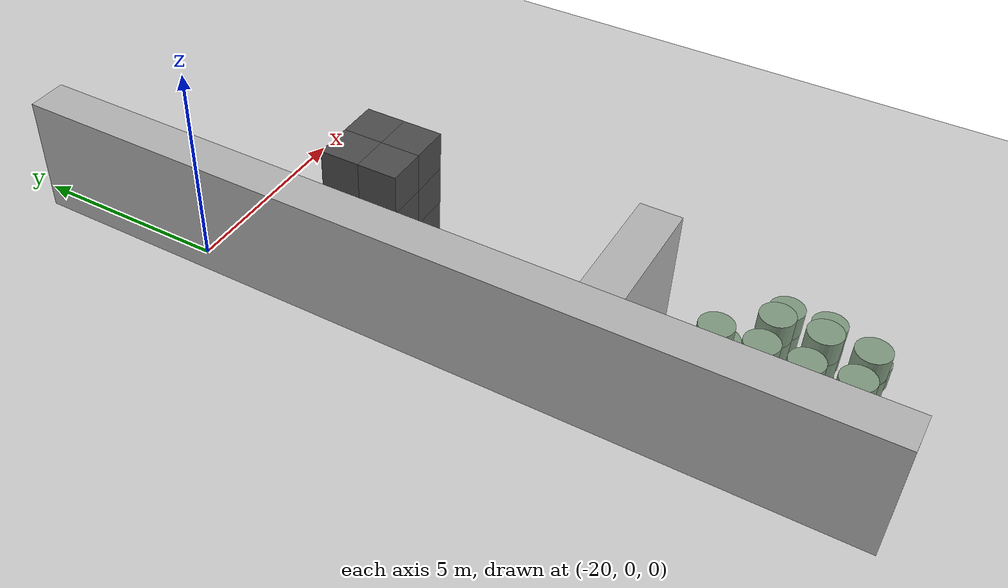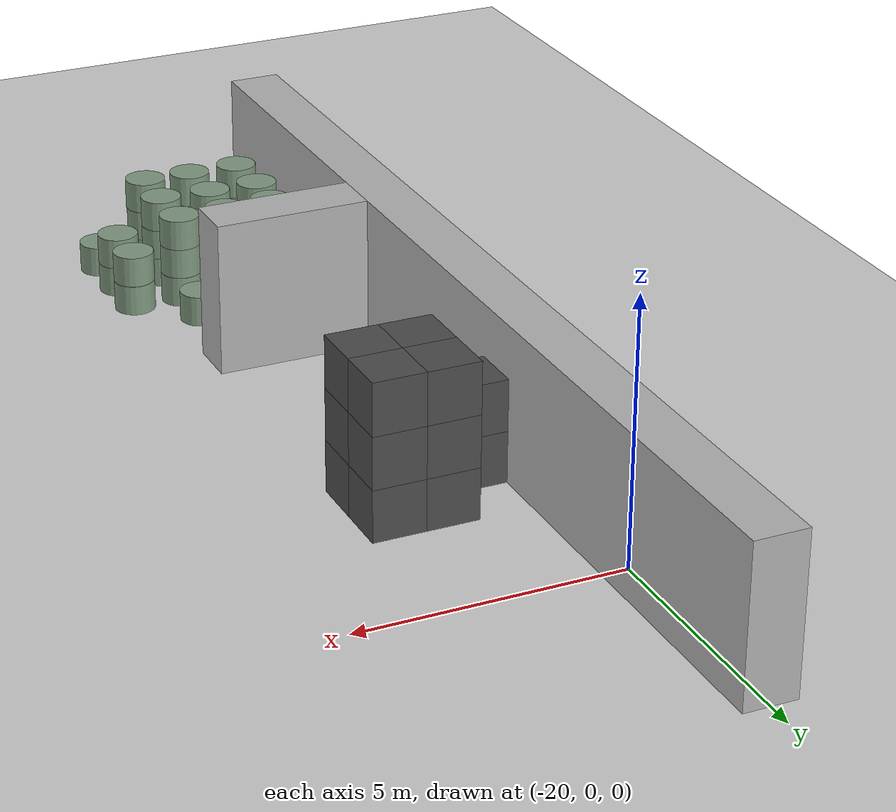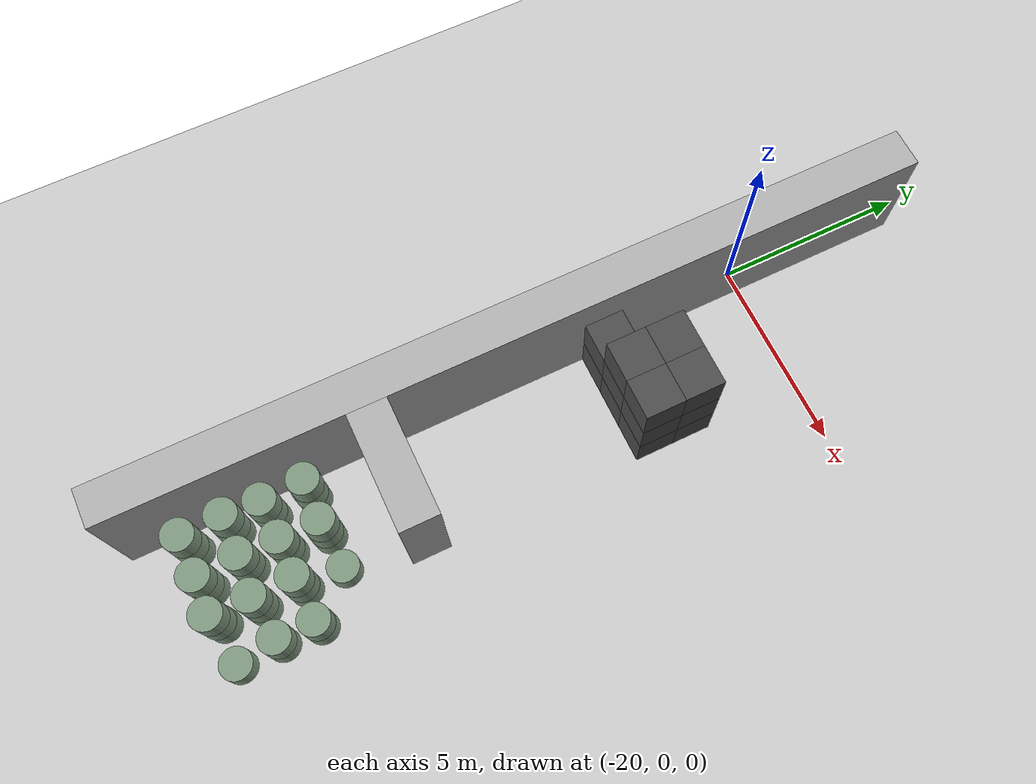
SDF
<sdf version="1.6">
 <world name="default">
  <include><uri>model://ground_plane</uri></include>
  <model name="wall_0">
   <pose>-20.0 -6.0 1.5 0 -0 0</pose>
   <static>True</static>
   <link name="link">
    <inertial>
     <mass>100</mass>
     <inertia>
      <ixx>0.166667</ixx>
      <ixy>0</ixy>
      <ixz>0</ixz>
      <iyy>0.166667</iyy>
      <iyz>0</iyz>
      <izz>0.166667</izz>
     </inertia>
    </inertial>
    <collision name="collision"><geometry><box><size>1.0 21.0 3.0</size></box></geometry></collision>
    <visual name="visual">
     <geometry><box><size>1.0 21.0 3.0</size></box></geometry>
     <material><ambient>0.7 0.7 0.7 1</ambient><diffuse>0.7 0.7 0.7 1</diffuse></material>
    </visual>
   </link>
  </model>
  <model name="wall_7">
   <pose>-18.0 -10.0 1.5 0 -0 0</pose>
   <static>True</static>
   <link name="link">
    <inertial>
     <mass>100</mass>
     <inertia>
      <ixx>0.166667</ixx>
      <ixy>0</ixy>
      <ixz>0</ixz>
      <iyy>0.166667</iyy>
      <iyz>0</iyz>
      <izz>0.166667</izz>
     </inertia>
    </inertial>
    <collision name="collision"><geometry><box><size>3.0 1.0 3.0</size></box></geometry></collision>
    <visual name="visual">
     <geometry><box><size>3.0 1.0 3.0</size></box></geometry>
     <material><ambient>0.7 0.7 0.7 1</ambient><diffuse>0.7 0.7 0.7 1</diffuse></material>
    </visual>
   </link>
  </model>
  <model name="unit_box_0">
   <pose>-19.0 -4.0 0.5 0 -0 0</pose>
   <static>True</static>
   <link name="link">
    <inertial>
     <mass>100</mass>
     <inertia>
      <ixx>0.166667</ixx>
      <ixy>0</ixy>
      <ixz>0</ixz>
      <iyy>0.166667</iyy>
      <iyz>0</iyz>
      <izz>0.166667</izz>
     </inertia>
    </inertial>
    <collision name="collision"><geometry><box><size>1.0 1.0 1.0</size></box></geometry></collision>
    <visual name="visual">
     <geometry><box><size>1.0 1.0 1.0</size></box></geometry>
     <material><ambient>0.3 0.3 0.3 1</ambient><diffuse>0.3 0.3 0.3 1</diffuse></material>
    </visual>
   </link>
  </model>
  <model name="unit_box_1">
   <pose>-19.0 -4.0 1.5 0 -0 0</pose>
   <static>True</static>
   <link name="link">
    <inertial>
     <mass>100</mass>
     <inertia>
      <ixx>0.166667</ixx>
      <ixy>0</ixy>
      <ixz>0</ixz>
      <iyy>0.166667</iyy>
      <iyz>0</iyz>
      <izz>0.166667</izz>
     </inertia>
    </inertial>
    <collision name="collision"><geometry><box><size>1.0 1.0 1.0</size></box></geometry></collision>
    <visual name="visual">
     <geometry><box><size>1.0 1.0 1.0</size></box></geometry>
     <material><ambient>0.3 0.3 0.3 1</ambient><diffuse>0.3 0.3 0.3 1</diffuse></material>
    </visual>
   </link>
  </model>
  <model name="unit_box_2">
   <pose>-18.0 -4.0 0.5 0 -0 0</pose>
   <static>True</static>
   <link name="link">
    <inertial>
     <mass>100</mass>
     <inertia>
      <ixx>0.166667</ixx>
      <ixy>0</ixy>
      <ixz>0</ixz>
      <iyy>0.166667</iyy>
      <iyz>0</iyz>
      <izz>0.166667</izz>
     </inertia>
    </inertial>
    <collision name="collision"><geometry><box><size>1.0 1.0 1.0</size></box></geometry></collision>
    <visual name="visual">
     <geometry><box><size>1.0 1.0 1.0</size></box></geometry>
     <material><ambient>0.3 0.3 0.3 1</ambient><diffuse>0.3 0.3 0.3 1</diffuse></material>
    </visual>
   </link>
  </model>
  <model name="unit_box_3">
   <pose>-18.0 -4.0 1.5 0 -0 0</pose>
   <static>True</static>
   <link name="link">
    <inertial>
     <mass>100</mass>
     <inertia>
      <ixx>0.166667</ixx>
      <ixy>0</ixy>
      <ixz>0</ixz>
      <iyy>0.166667</iyy>
      <iyz>0</iyz>
      <izz>0.166667</izz>
     </inertia>
    </inertial>
    <collision name="collision"><geometry><box><size>1.0 1.0 1.0</size></box></geometry></collision>
    <visual name="visual">
     <geometry><box><size>1.0 1.0 1.0</size></box></geometry>
     <material><ambient>0.3 0.3 0.3 1</ambient><diffuse>0.3 0.3 0.3 1</diffuse></material>
    </visual>
   </link>
  </model>
  <model name="unit_box_4">
   <pose>-18.0 -4.0 2.5 0 -0 0</pose>
   <static>True</static>
   <link name="link">
    <inertial>
     <mass>100</mass>
     <inertia>
      <ixx>0.166667</ixx>
      <ixy>0</ixy>
      <ixz>0</ixz>
      <iyy>0.166667</iyy>
      <iyz>0</iyz>
      <izz>0.166667</izz>
     </inertia>
    </inertial>
    <collision name="collision"><geometry><box><size>1.0 1.0 1.0</size></box></geometry></collision>
    <visual name="visual">
     <geometry><box><size>1.0 1.0 1.0</size></box></geometry>
     <material><ambient>0.3 0.3 0.3 1</ambient><diffuse>0.3 0.3 0.3 1</diffuse></material>
    </visual>
   </link>
  </model>
  <model name="unit_box_5">
   <pose>-18.0 -3.0 0.5 0 -0 0</pose>
   <static>True</static>
   <link name="link">
    <inertial>
     <mass>100</mass>
     <inertia>
      <ixx>0.166667</ixx>
      <ixy>0</ixy>
      <ixz>0</ixz>
      <iyy>0.166667</iyy>
      <iyz>0</iyz>
      <izz>0.166667</izz>
     </inertia>
    </inertial>
    <collision name="collision"><geometry><box><size>1.0 1.0 1.0</size></box></geometry></collision>
    <visual name="visual">
     <geometry><box><size>1.0 1.0 1.0</size></box></geometry>
     <material><ambient>0.3 0.3 0.3 1</ambient><diffuse>0.3 0.3 0.3 1</diffuse></material>
    </visual>
   </link>
  </model>
  <model name="unit_box_6">
   <pose>-18.0 -3.0 1.5 0 -0 0</pose>
   <static>True</static>
   <link name="link">
    <inertial>
     <mass>100</mass>
     <inertia>
      <ixx>0.166667</ixx>
      <ixy>0</ixy>
      <ixz>0</ixz>
      <iyy>0.166667</iyy>
      <iyz>0</iyz>
      <izz>0.166667</izz>
     </inertia>
    </inertial>
    <collision name="collision"><geometry><box><size>1.0 1.0 1.0</size></box></geometry></collision>
    <visual name="visual">
     <geometry><box><size>1.0 1.0 1.0</size></box></geometry>
     <material><ambient>0.3 0.3 0.3 1</ambient><diffuse>0.3 0.3 0.3 1</diffuse></material>
    </visual>
   </link>
  </model>
  <model name="unit_box_7">
   <pose>-18.0 -3.0 2.5 0 -0 0</pose>
   <static>True</static>
   <link name="link">
    <inertial>
     <mass>100</mass>
     <inertia>
      <ixx>0.166667</ixx>
      <ixy>0</ixy>
      <ixz>0</ixz>
      <iyy>0.166667</iyy>
      <iyz>0</iyz>
      <izz>0.166667</izz>
     </inertia>
    </inertial>
    <collision name="collision"><geometry><box><size>1.0 1.0 1.0</size></box></geometry></collision>
    <visual name="visual">
     <geometry><box><size>1.0 1.0 1.0</size></box></geometry>
     <material><ambient>0.3 0.3 0.3 1</ambient><diffuse>0.3 0.3 0.3 1</diffuse></material>
    </visual>
   </link>
  </model>
  <model name="unit_box_17">
   <pose>-17.0 -4.0 0.5 0 -0 0</pose>
   <static>True</static>
   <link name="link">
    <inertial>
     <mass>100</mass>
     <inertia>
      <ixx>0.166667</ixx>
      <ixy>0</ixy>
      <ixz>0</ixz>
      <iyy>0.166667</iyy>
      <iyz>0</iyz>
      <izz>0.166667</izz>
     </inertia>
    </inertial>
    <collision name="collision"><geometry><box><size>1.0 1.0 1.0</size></box></geometry></collision>
    <visual name="visual">
     <geometry><box><size>1.0 1.0 1.0</size></box></geometry>
     <material><ambient>0.3 0.3 0.3 1</ambient><diffuse>0.3 0.3 0.3 1</diffuse></material>
    </visual>
   </link>
  </model>
  <model name="unit_box_18">
   <pose>-17.0 -4.0 1.5 0 -0 0</pose>
   <static>True</static>
   <link name="link">
    <inertial>
     <mass>100</mass>
     <inertia>
      <ixx>0.166667</ixx>
      <ixy>0</ixy>
      <ixz>0</ixz>
      <iyy>0.166667</iyy>
      <iyz>0</iyz>
      <izz>0.166667</izz>
     </inertia>
    </inertial>
    <collision name="collision"><geometry><box><size>1.0 1.0 1.0</size></box></geometry></collision>
    <visual name="visual">
     <geometry><box><size>1.0 1.0 1.0</size></box></geometry>
     <material><ambient>0.3 0.3 0.3 1</ambient><diffuse>0.3 0.3 0.3 1</diffuse></material>
    </visual>
   </link>
  </model>
  <model name="unit_box_19">
   <pose>-17.0 -4.0 2.5 0 -0 0</pose>
   <static>True</static>
   <link name="link">
    <inertial>
     <mass>100</mass>
     <inertia>
      <ixx>0.166667</ixx>
      <ixy>0</ixy>
      <ixz>0</ixz>
      <iyy>0.166667</iyy>
      <iyz>0</iyz>
      <izz>0.166667</izz>
     </inertia>
    </inertial>
    <collision name="collision"><geometry><box><size>1.0 1.0 1.0</size></box></geometry></collision>
    <visual name="visual">
     <geometry><box><size>1.0 1.0 1.0</size></box></geometry>
     <material><ambient>0.3 0.3 0.3 1</ambient><diffuse>0.3 0.3 0.3 1</diffuse></material>
    </visual>
   </link>
  </model>
  <model name="unit_box_20">
   <pose>-17.0 -3.0 0.5 0 -0 0</pose>
   <static>True</static>
   <link name="link">
    <inertial>
     <mass>100</mass>
     <inertia>
      <ixx>0.166667</ixx>
      <ixy>0</ixy>
      <ixz>0</ixz>
      <iyy>0.166667</iyy>
      <iyz>0</iyz>
      <izz>0.166667</izz>
     </inertia>
    </inertial>
    <collision name="collision"><geometry><box><size>1.0 1.0 1.0</size></box></geometry></collision>
    <visual name="visual">
     <geometry><box><size>1.0 1.0 1.0</size></box></geometry>
     <material><ambient>0.3 0.3 0.3 1</ambient><diffuse>0.3 0.3 0.3 1</diffuse></material>
    </visual>
   </link>
  </model>
  <model name="unit_box_21">
   <pose>-17.0 -3.0 1.5 0 -0 0</pose>
   <static>True</static>
   <link name="link">
    <inertial>
     <mass>100</mass>
     <inertia>
      <ixx>0.166667</ixx>
      <ixy>0</ixy>
      <ixz>0</ixz>
      <iyy>0.166667</iyy>
      <iyz>0</iyz>
      <izz>0.166667</izz>
     </inertia>
    </inertial>
    <collision name="collision"><geometry><box><size>1.0 1.0 1.0</size></box></geometry></collision>
    <visual name="visual">
     <geometry><box><size>1.0 1.0 1.0</size></box></geometry>
     <material><ambient>0.3 0.3 0.3 1</ambient><diffuse>0.3 0.3 0.3 1</diffuse></material>
    </visual>
   </link>
  </model>
  <model name="unit_box_22">
   <pose>-17.0 -3.0 2.5 0 -0 0</pose>
   <static>True</static>
   <link name="link">
    <inertial>
     <mass>100</mass>
     <inertia>
      <ixx>0.166667</ixx>
      <ixy>0</ixy>
      <ixz>0</ixz>
      <iyy>0.166667</iyy>
      <iyz>0</iyz>
      <izz>0.166667</izz>
     </inertia>
    </inertial>
    <collision name="collision"><geometry><box><size>1.0 1.0 1.0</size></box></geometry></collision>
    <visual name="visual">
     <geometry><box><size>1.0 1.0 1.0</size></box></geometry>
     <material><ambient>0.3 0.3 0.3 1</ambient><diffuse>0.3 0.3 0.3 1</diffuse></material>
    </visual>
   </link>
  </model>
  <model name="unit_cylinder_0">
   <pose>-18.992383481 -15.0072377229 0.3 0 -0 0</pose>
   <static>True</static>
   <link name="link">
    <inertial>
     <mass>100</mass>
     <inertia><ixx>0.145833</ixx><ixy>0</ixy><ixz>0</ixz><iyy>0.145833</iyy><iyz>0</iyz><izz>0.125</izz></inertia>
    </inertial>
    <collision name="collision">
     <geometry><cylinder><radius>0.4</radius><length>0.6</length></cylinder></geometry>
     <max_contacts>100</max_contacts>
    </collision>
    <visual name="visual">
     <geometry><cylinder><radius>0.4</radius><length>0.6</length></cylinder></geometry>
     <material><ambient>0.5 0.6 0.5 1</ambient><diffuse>0.5 0.6 0.5 1</diffuse></material>
    </visual>
   </link>
  </model>
  <model name="unit_cylinder_1">
   <pose>-18.9906101452 -15.0110085297 0.9 0 -0 0</pose>
   <static>True</static>
   <link name="link">
    <inertial>
     <mass>100</mass>
     <inertia><ixx>0.145833</ixx><ixy>0</ixy><ixz>0</ixz><iyy>0.145833</iyy><iyz>0</iyz><izz>0.125</izz></inertia>
    </inertial>
    <collision name="collision">
     <geometry><cylinder><radius>0.4</radius><length>0.6</length></cylinder></geometry>
     <max_contacts>100</max_contacts>
    </collision>
    <visual name="visual">
     <geometry><cylinder><radius>0.4</radius><length>0.6</length></cylinder></geometry>
     <material><ambient>0.5 0.6 0.5 1</ambient><diffuse>0.5 0.6 0.5 1</diffuse></material>
    </visual>
   </link>
  </model>
  <model name="unit_cylinder_2">
   <pose>-18.9832158188 -15.0083377379 1.5 0 -0 0</pose>
   <static>True</static>
   <link name="link">
    <inertial>
     <mass>100</mass>
     <inertia><ixx>0.145833</ixx><ixy>0</ixy><ixz>0</ixz><iyy>0.145833</iyy><iyz>0</iyz><izz>0.125</izz></inertia>
    </inertial>
    <collision name="collision">
     <geometry><cylinder><radius>0.4</radius><length>0.6</length></cylinder></geometry>
     <max_contacts>100</max_contacts>
    </collision>
    <visual name="visual">
     <geometry><cylinder><radius>0.4</radius><length>0.6</length></cylinder></geometry>
     <material><ambient>0.5 0.6 0.5 1</ambient><diffuse>0.5 0.6 0.5 1</diffuse></material>
    </visual>
   </link>
  </model>
  <model name="unit_cylinder_3">
   <pose>-19.0108837228 -13.9803067212 0.3 0 -0 0</pose>
   <static>True</static>
   <link name="link">
    <inertial>
     <mass>100</mass>
     <inertia><ixx>0.145833</ixx><ixy>0</ixy><ixz>0</ixz><iyy>0.145833</iyy><iyz>0</iyz><izz>0.125</izz></inertia>
    </inertial>
    <collision name="collision">
     <geometry><cylinder><radius>0.4</radius><length>0.6</length></cylinder></geometry>
     <max_contacts>100</max_contacts>
    </collision>
    <visual name="visual">
     <geometry><cylinder><radius>0.4</radius><length>0.6</length></cylinder></geometry>
     <material><ambient>0.5 0.6 0.5 1</ambient><diffuse>0.5 0.6 0.5 1</diffuse></material>
    </visual>
   </link>
  </model>
  <model name="unit_cylinder_4">
   <pose>-19.0072195606 -13.9732509386 0.9 0 -0 0</pose>
   <static>True</static>
   <link name="link">
    <inertial>
     <mass>100</mass>
     <inertia><ixx>0.145833</ixx><ixy>0</ixy><ixz>0</ixz><iyy>0.145833</iyy><iyz>0</iyz><izz>0.125</izz></inertia>
    </inertial>
    <collision name="collision">
     <geometry><cylinder><radius>0.4</radius><length>0.6</length></cylinder></geometry>
     <max_contacts>100</max_contacts>
    </collision>
    <visual name="visual">
     <geometry><cylinder><radius>0.4</radius><length>0.6</length></cylinder></geometry>
     <material><ambient>0.5 0.6 0.5 1</ambient><diffuse>0.5 0.6 0.5 1</diffuse></material>
    </visual>
   </link>
  </model>
  <model name="unit_cylinder_5">
   <pose>-19.0151361084 -13.9637734427 1.5 0 -0 0</pose>
   <static>True</static>
   <link name="link">
    <inertial>
     <mass>100</mass>
     <inertia><ixx>0.145833</ixx><ixy>0</ixy><ixz>0</ixz><iyy>0.145833</iyy><iyz>0</iyz><izz>0.125</izz></inertia>
    </inertial>
    <collision name="collision">
     <geometry><cylinder><radius>0.4</radius><length>0.6</length></cylinder></geometry>
     <max_contacts>100</max_contacts>
    </collision>
    <visual name="visual">
     <geometry><cylinder><radius>0.4</radius><length>0.6</length></cylinder></geometry>
     <material><ambient>0.5 0.6 0.5 1</ambient><diffuse>0.5 0.6 0.5 1</diffuse></material>
    </visual>
   </link>
  </model>
  <model name="unit_cylinder_6">
   <pose>-18.9718689891 -13.0432599422 0.3 0 -0 0</pose>
   <static>True</static>
   <link name="link">
    <inertial>
     <mass>100</mass>
     <inertia><ixx>0.145833</ixx><ixy>0</ixy><ixz>0</ixz><iyy>0.145833</iyy><iyz>0</iyz><izz>0.125</izz></inertia>
    </inertial>
    <collision name="collision">
     <geometry><cylinder><radius>0.4</radius><length>0.6</length></cylinder></geometry>
     <max_contacts>100</max_contacts>
    </collision>
    <visual name="visual">
     <geometry><cylinder><radius>0.4</radius><length>0.6</length></cylinder></geometry>
     <material><ambient>0.5 0.6 0.5 1</ambient><diffuse>0.5 0.6 0.5 1</diffuse></material>
    </visual>
   </link>
  </model>
  <model name="unit_cylinder_7">
   <pose>-18.9631745293 -13.0496717198 0.9 0 -0 0</pose>
   <static>True</static>
   <link name="link">
    <inertial>
     <mass>100</mass>
     <inertia><ixx>0.145833</ixx><ixy>0</ixy><ixz>0</ixz><iyy>0.145833</iyy><iyz>0</iyz><izz>0.125</izz></inertia>
    </inertial>
    <collision name="collision">
     <geometry><cylinder><radius>0.4</radius><length>0.6</length></cylinder></geometry>
     <max_contacts>100</max_contacts>
    </collision>
    <visual name="visual">
     <geometry><cylinder><radius>0.4</radius><length>0.6</length></cylinder></geometry>
     <material><ambient>0.5 0.6 0.5 1</ambient><diffuse>0.5 0.6 0.5 1</diffuse></material>
    </visual>
   </link>
  </model>
  <model name="unit_cylinder_8">
   <pose>-18.9575121283 -13.0511287856 1.5 0 -0 0</pose>
   <static>True</static>
   <link name="link">
    <inertial>
     <mass>100</mass>
     <inertia><ixx>0.145833</ixx><ixy>0</ixy><ixz>0</ixz><iyy>0.145833</iyy><iyz>0</iyz><izz>0.125</izz></inertia>
    </inertial>
    <collision name="collision">
     <geometry><cylinder><radius>0.4</radius><length>0.6</length></cylinder></geometry>
     <max_contacts>100</max_contacts>
    </collision>
    <visual name="visual">
     <geometry><cylinder><radius>0.4</radius><length>0.6</length></cylinder></geometry>
     <material><ambient>0.5 0.6 0.5 1</ambient><diffuse>0.5 0.6 0.5 1</diffuse></material>
    </visual>
   </link>
  </model>
  <model name="unit_cylinder_9">
   <pose>-18.9910343364 -11.9909991422 0.3 0 -0 0</pose>
   <static>True</static>
   <link name="link">
    <inertial>
     <mass>100</mass>
     <inertia><ixx>0.145833</ixx><ixy>0</ixy><ixz>0</ixz><iyy>0.145833</iyy><iyz>0</iyz><izz>0.125</izz></inertia>
    </inertial>
    <collision name="collision">
     <geometry><cylinder><radius>0.4</radius><length>0.6</length></cylinder></geometry>
     <max_contacts>100</max_contacts>
    </collision>
    <visual name="visual">
     <geometry><cylinder><radius>0.4</radius><length>0.6</length></cylinder></geometry>
     <material><ambient>0.5 0.6 0.5 1</ambient><diffuse>0.5 0.6 0.5 1</diffuse></material>
    </visual>
   </link>
  </model>
  <model name="unit_cylinder_10">
   <pose>-18.9872083162 -12.0013920998 0.9 0 -0 0</pose>
   <static>True</static>
   <link name="link">
    <inertial>
     <mass>100</mass>
     <inertia><ixx>0.145833</ixx><ixy>0</ixy><ixz>0</ixz><iyy>0.145833</iyy><iyz>0</iyz><izz>0.125</izz></inertia>
    </inertial>
    <collision name="collision">
     <geometry><cylinder><radius>0.4</radius><length>0.6</length></cylinder></geometry>
     <max_contacts>100</max_contacts>
    </collision>
    <visual name="visual">
     <geometry><cylinder><radius>0.4</radius><length>0.6</length></cylinder></geometry>
     <material><ambient>0.5 0.6 0.5 1</ambient><diffuse>0.5 0.6 0.5 1</diffuse></material>
    </visual>
   </link>
  </model>
  <model name="unit_cylinder_11">
   <pose>-18.9872956924 -11.9844547445 1.5 0 -0 0</pose>
   <static>True</static>
   <link name="link">
    <inertial>
     <mass>100</mass>
     <inertia><ixx>0.145833</ixx><ixy>0</ixy><ixz>0</ixz><iyy>0.145833</iyy><iyz>0</iyz><izz>0.125</izz></inertia>
    </inertial>
    <collision name="collision">
     <geometry><cylinder><radius>0.4</radius><length>0.6</length></cylinder></geometry>
     <max_contacts>100</max_contacts>
    </collision>
    <visual name="visual">
     <geometry><cylinder><radius>0.4</radius><length>0.6</length></cylinder></geometry>
     <material><ambient>0.5 0.6 0.5 1</ambient><diffuse>0.5 0.6 0.5 1</diffuse></material>
    </visual>
   </link>
  </model>
  <model name="unit_cylinder_12">
   <pose>-17.9830944902 -15.0118822437 0.3 0 -0 0</pose>
   <static>True</static>
   <link name="link">
    <inertial>
     <mass>100</mass>
     <inertia><ixx>0.145833</ixx><ixy>0</ixy><ixz>0</ixz><iyy>0.145833</iyy><iyz>0</iyz><izz>0.125</izz></inertia>
    </inertial>
    <collision name="collision">
     <geometry><cylinder><radius>0.4</radius><length>0.6</length></cylinder></geometry>
     <max_contacts>100</max_contacts>
    </collision>
    <visual name="visual">
     <geometry><cylinder><radius>0.4</radius><length>0.6</length></cylinder></geometry>
     <material><ambient>0.5 0.6 0.5 1</ambient><diffuse>0.5 0.6 0.5 1</diffuse></material>
    </visual>
   </link>
  </model>
  <model name="unit_cylinder_13">
   <pose>-17.973816464 -14.9981432145 0.9 0 -0 0</pose>
   <static>True</static>
   <link name="link">
    <inertial>
     <mass>100</mass>
     <inertia><ixx>0.145833</ixx><ixy>0</ixy><ixz>0</ixz><iyy>0.145833</iyy><iyz>0</iyz><izz>0.125</izz></inertia>
    </inertial>
    <collision name="collision">
     <geometry><cylinder><radius>0.4</radius><length>0.6</length></cylinder></geometry>
     <max_contacts>100</max_contacts>
    </collision>
    <visual name="visual">
     <geometry><cylinder><radius>0.4</radius><length>0.6</length></cylinder></geometry>
     <material><ambient>0.5 0.6 0.5 1</ambient><diffuse>0.5 0.6 0.5 1</diffuse></material>
    </visual>
   </link>
  </model>
  <model name="unit_cylinder_14">
   <pose>-17.9680458211 -14.9991347589 1.5 0 -0 0</pose>
   <static>True</static>
   <link name="link">
    <inertial>
     <mass>100</mass>
     <inertia><ixx>0.145833</ixx><ixy>0</ixy><ixz>0</ixz><iyy>0.145833</iyy><iyz>0</iyz><izz>0.125</izz></inertia>
    </inertial>
    <collision name="collision">
     <geometry><cylinder><radius>0.4</radius><length>0.6</length></cylinder></geometry>
     <max_contacts>100</max_contacts>
    </collision>
    <visual name="visual">
     <geometry><cylinder><radius>0.4</radius><length>0.6</length></cylinder></geometry>
     <material><ambient>0.5 0.6 0.5 1</ambient><diffuse>0.5 0.6 0.5 1</diffuse></material>
    </visual>
   </link>
  </model>
  <model name="unit_cylinder_15">
   <pose>-18.0260078443 -13.9808881545 0.3 0 -0 0</pose>
   <static>True</static>
   <link name="link">
    <inertial>
     <mass>100</mass>
     <inertia><ixx>0.145833</ixx><ixy>0</ixy><ixz>0</ixz><iyy>0.145833</iyy><iyz>0</iyz><izz>0.125</izz></inertia>
    </inertial>
    <collision name="collision">
     <geometry><cylinder><radius>0.4</radius><length>0.6</length></cylinder></geometry>
     <max_contacts>100</max_contacts>
    </collision>
    <visual name="visual">
     <geometry><cylinder><radius>0.4</radius><length>0.6</length></cylinder></geometry>
     <material><ambient>0.5 0.6 0.5 1</ambient><diffuse>0.5 0.6 0.5 1</diffuse></material>
    </visual>
   </link>
  </model>
  <model name="unit_cylinder_16">
   <pose>-18.0192814946 -13.9717434889 0.9 0 -0 0</pose>
   <static>True</static>
   <link name="link">
    <inertial>
     <mass>100</mass>
     <inertia><ixx>0.145833</ixx><ixy>0</ixy><ixz>0</ixz><iyy>0.145833</iyy><iyz>0</iyz><izz>0.125</izz></inertia>
    </inertial>
    <collision name="collision">
     <geometry><cylinder><radius>0.4</radius><length>0.6</length></cylinder></geometry>
     <max_contacts>100</max_contacts>
    </collision>
    <visual name="visual">
     <geometry><cylinder><radius>0.4</radius><length>0.6</length></cylinder></geometry>
     <material><ambient>0.5 0.6 0.5 1</ambient><diffuse>0.5 0.6 0.5 1</diffuse></material>
    </visual>
   </link>
  </model>
  <model name="unit_cylinder_17">
   <pose>-18.0183931369 -13.9687578417 1.5 0 -0 0</pose>
   <static>True</static>
   <link name="link">
    <inertial>
     <mass>100</mass>
     <inertia><ixx>0.145833</ixx><ixy>0</ixy><ixz>0</ixz><iyy>0.145833</iyy><iyz>0</iyz><izz>0.125</izz></inertia>
    </inertial>
    <collision name="collision">
     <geometry><cylinder><radius>0.4</radius><length>0.6</length></cylinder></geometry>
     <max_contacts>100</max_contacts>
    </collision>
    <visual name="visual">
     <geometry><cylinder><radius>0.4</radius><length>0.6</length></cylinder></geometry>
     <material><ambient>0.5 0.6 0.5 1</ambient><diffuse>0.5 0.6 0.5 1</diffuse></material>
    </visual>
   </link>
  </model>
  <model name="unit_cylinder_18">
   <pose>-17.9757961112 -12.9944377215 0.3 0 -0 0</pose>
   <static>True</static>
   <link name="link">
    <inertial>
     <mass>100</mass>
     <inertia><ixx>0.145833</ixx><ixy>0</ixy><ixz>0</ixz><iyy>0.145833</iyy><iyz>0</iyz><izz>0.125</izz></inertia>
    </inertial>
    <collision name="collision">
     <geometry><cylinder><radius>0.4</radius><length>0.6</length></cylinder></geometry>
     <max_contacts>100</max_contacts>
    </collision>
    <visual name="visual">
     <geometry><cylinder><radius>0.4</radius><length>0.6</length></cylinder></geometry>
     <material><ambient>0.5 0.6 0.5 1</ambient><diffuse>0.5 0.6 0.5 1</diffuse></material>
    </visual>
   </link>
  </model>
  <model name="unit_cylinder_19">
   <pose>-17.9685871815 -12.9998680215 0.9 0 -0 0</pose>
   <static>True</static>
   <link name="link">
    <inertial>
     <mass>100</mass>
     <inertia><ixx>0.145833</ixx><ixy>0</ixy><ixz>0</ixz><iyy>0.145833</iyy><iyz>0</iyz><izz>0.125</izz></inertia>
    </inertial>
    <collision name="collision">
     <geometry><cylinder><radius>0.4</radius><length>0.6</length></cylinder></geometry>
     <max_contacts>100</max_contacts>
    </collision>
    <visual name="visual">
     <geometry><cylinder><radius>0.4</radius><length>0.6</length></cylinder></geometry>
     <material><ambient>0.5 0.6 0.5 1</ambient><diffuse>0.5 0.6 0.5 1</diffuse></material>
    </visual>
   </link>
  </model>
  <model name="unit_cylinder_20">
   <pose>-17.9693027385 -13.0056174034 1.5 0 -0 0</pose>
   <static>True</static>
   <link name="link">
    <inertial>
     <mass>100</mass>
     <inertia><ixx>0.145833</ixx><ixy>0</ixy><ixz>0</ixz><iyy>0.145833</iyy><iyz>0</iyz><izz>0.125</izz></inertia>
    </inertial>
    <collision name="collision">
     <geometry><cylinder><radius>0.4</radius><length>0.6</length></cylinder></geometry>
     <max_contacts>100</max_contacts>
    </collision>
    <visual name="visual">
     <geometry><cylinder><radius>0.4</radius><length>0.6</length></cylinder></geometry>
     <material><ambient>0.5 0.6 0.5 1</ambient><diffuse>0.5 0.6 0.5 1</diffuse></material>
    </visual>
   </link>
  </model>
  <model name="unit_cylinder_21">
   <pose>-17.957307617 -12.024083192 0.3 0 -0 0</pose>
   <static>True</static>
   <link name="link">
    <inertial>
     <mass>100</mass>
     <inertia><ixx>0.145833</ixx><ixy>0</ixy><ixz>0</ixz><iyy>0.145833</iyy><iyz>0</iyz><izz>0.125</izz></inertia>
    </inertial>
    <collision name="collision">
     <geometry><cylinder><radius>0.4</radius><length>0.6</length></cylinder></geometry>
     <max_contacts>100</max_contacts>
    </collision>
    <visual name="visual">
     <geometry><cylinder><radius>0.4</radius><length>0.6</length></cylinder></geometry>
     <material><ambient>0.5 0.6 0.5 1</ambient><diffuse>0.5 0.6 0.5 1</diffuse></material>
    </visual>
   </link>
  </model>
  <model name="unit_cylinder_22">
   <pose>-17.9548054058 -12.0292219561 0.9 0 -0 0</pose>
   <static>True</static>
   <link name="link">
    <inertial>
     <mass>100</mass>
     <inertia><ixx>0.145833</ixx><ixy>0</ixy><ixz>0</ixz><iyy>0.145833</iyy><iyz>0</iyz><izz>0.125</izz></inertia>
    </inertial>
    <collision name="collision">
     <geometry><cylinder><radius>0.4</radius><length>0.6</length></cylinder></geometry>
     <max_contacts>100</max_contacts>
    </collision>
    <visual name="visual">
     <geometry><cylinder><radius>0.4</radius><length>0.6</length></cylinder></geometry>
     <material><ambient>0.5 0.6 0.5 1</ambient><diffuse>0.5 0.6 0.5 1</diffuse></material>
    </visual>
   </link>
  </model>
  <model name="unit_cylinder_23">
   <pose>-17.9590913471 -12.0182812591 1.5 0 -0 0</pose>
   <static>True</static>
   <link name="link">
    <inertial>
     <mass>100</mass>
     <inertia><ixx>0.145833</ixx><ixy>0</ixy><ixz>0</ixz><iyy>0.145833</iyy><iyz>0</iyz><izz>0.125</izz></inertia>
    </inertial>
    <collision name="collision">
     <geometry><cylinder><radius>0.4</radius><length>0.6</length></cylinder></geometry>
     <max_contacts>100</max_contacts>
    </collision>
    <visual name="visual">
     <geometry><cylinder><radius>0.4</radius><length>0.6</length></cylinder></geometry>
     <material><ambient>0.5 0.6 0.5 1</ambient><diffuse>0.5 0.6 0.5 1</diffuse></material>
    </visual>
   </link>
  </model>
  <model name="unit_cylinder_24">
   <pose>-17.0468392114 -15.0260560593 0.3 0 -0 0</pose>
   <static>True</static>
   <link name="link">
    <inertial>
     <mass>100</mass>
     <inertia><ixx>0.145833</ixx><ixy>0</ixy><ixz>0</ixz><iyy>0.145833</iyy><iyz>0</iyz><izz>0.125</izz></inertia>
    </inertial>
    <collision name="collision">
     <geometry><cylinder><radius>0.4</radius><length>0.6</length></cylinder></geometry>
     <max_contacts>100</max_contacts>
    </collision>
    <visual name="visual">
     <geometry><cylinder><radius>0.4</radius><length>0.6</length></cylinder></geometry>
     <material><ambient>0.5 0.6 0.5 1</ambient><diffuse>0.5 0.6 0.5 1</diffuse></material>
    </visual>
   </link>
  </model>
  <model name="unit_cylinder_25">
   <pose>-17.0446551461 -15.0450157685 0.9 0 -0 0</pose>
   <static>True</static>
   <link name="link">
    <inertial>
     <mass>100</mass>
     <inertia><ixx>0.145833</ixx><ixy>0</ixy><ixz>0</ixz><iyy>0.145833</iyy><iyz>0</iyz><izz>0.125</izz></inertia>
    </inertial>
    <collision name="collision">
     <geometry><cylinder><radius>0.4</radius><length>0.6</length></cylinder></geometry>
     <max_contacts>100</max_contacts>
    </collision>
    <visual name="visual">
     <geometry><cylinder><radius>0.4</radius><length>0.6</length></cylinder></geometry>
     <material><ambient>0.5 0.6 0.5 1</ambient><diffuse>0.5 0.6 0.5 1</diffuse></material>
    </visual>
   </link>
  </model>
  <model name="unit_cylinder_26">
   <pose>-17.0303712585 -15.040075416 1.5 0 -0 0</pose>
   <static>True</static>
   <link name="link">
    <inertial>
     <mass>100</mass>
     <inertia><ixx>0.145833</ixx><ixy>0</ixy><ixz>0</ixz><iyy>0.145833</iyy><iyz>0</iyz><izz>0.125</izz></inertia>
    </inertial>
    <collision name="collision">
     <geometry><cylinder><radius>0.4</radius><length>0.6</length></cylinder></geometry>
     <max_contacts>100</max_contacts>
    </collision>
    <visual name="visual">
     <geometry><cylinder><radius>0.4</radius><length>0.6</length></cylinder></geometry>
     <material><ambient>0.5 0.6 0.5 1</ambient><diffuse>0.5 0.6 0.5 1</diffuse></material>
    </visual>
   </link>
  </model>
  <model name="unit_cylinder_27">
   <pose>-17.0113488317 -14.0468256916 0.3 0 -0 0</pose>
   <static>True</static>
   <link name="link">
    <inertial>
     <mass>100</mass>
     <inertia><ixx>0.145833</ixx><ixy>0</ixy><ixz>0</ixz><iyy>0.145833</iyy><iyz>0</iyz><izz>0.125</izz></inertia>
    </inertial>
    <collision name="collision">
     <geometry><cylinder><radius>0.4</radius><length>0.6</length></cylinder></geometry>
     <max_contacts>100</max_contacts>
    </collision>
    <visual name="visual">
     <geometry><cylinder><radius>0.4</radius><length>0.6</length></cylinder></geometry>
     <material><ambient>0.5 0.6 0.5 1</ambient><diffuse>0.5 0.6 0.5 1</diffuse></material>
    </visual>
   </link>
  </model>
  <model name="unit_cylinder_28">
   <pose>-16.9976039843 -14.0304749645 0.9 0 -0 0</pose>
   <static>True</static>
   <link name="link">
    <inertial>
     <mass>100</mass>
     <inertia><ixx>0.145833</ixx><ixy>0</ixy><ixz>0</ixz><iyy>0.145833</iyy><iyz>0</iyz><izz>0.125</izz></inertia>
    </inertial>
    <collision name="collision">
     <geometry><cylinder><radius>0.4</radius><length>0.6</length></cylinder></geometry>
     <max_contacts>100</max_contacts>
    </collision>
    <visual name="visual">
     <geometry><cylinder><radius>0.4</radius><length>0.6</length></cylinder></geometry>
     <material><ambient>0.5 0.6 0.5 1</ambient><diffuse>0.5 0.6 0.5 1</diffuse></material>
    </visual>
   </link>
  </model>
  <model name="unit_cylinder_29">
   <pose>-17.0001607459 -14.0320010005 1.5 0 -0 0</pose>
   <static>True</static>
   <link name="link">
    <inertial>
     <mass>100</mass>
     <inertia><ixx>0.145833</ixx><ixy>0</ixy><ixz>0</ixz><iyy>0.145833</iyy><iyz>0</iyz><izz>0.125</izz></inertia>
    </inertial>
    <collision name="collision">
     <geometry><cylinder><radius>0.4</radius><length>0.6</length></cylinder></geometry>
     <max_contacts>100</max_contacts>
    </collision>
    <visual name="visual">
     <geometry><cylinder><radius>0.4</radius><length>0.6</length></cylinder></geometry>
     <material><ambient>0.5 0.6 0.5 1</ambient><diffuse>0.5 0.6 0.5 1</diffuse></material>
    </visual>
   </link>
  </model>
  <model name="unit_cylinder_30">
   <pose>-17.0124594089 -13.0011924922 0.3 0 -0 0</pose>
   <static>True</static>
   <link name="link">
    <inertial>
     <mass>100</mass>
     <inertia><ixx>0.145833</ixx><ixy>0</ixy><ixz>0</ixz><iyy>0.145833</iyy><iyz>0</iyz><izz>0.125</izz></inertia>
    </inertial>
    <collision name="collision">
     <geometry><cylinder><radius>0.4</radius><length>0.6</length></cylinder></geometry>
     <max_contacts>100</max_contacts>
    </collision>
    <visual name="visual">
     <geometry><cylinder><radius>0.4</radius><length>0.6</length></cylinder></geometry>
     <material><ambient>0.5 0.6 0.5 1</ambient><diffuse>0.5 0.6 0.5 1</diffuse></material>
    </visual>
   </link>
  </model>
  <model name="unit_cylinder_31">
   <pose>-17.015500373 -13.0086255976 0.9 0 -0 0</pose>
   <static>True</static>
   <link name="link">
    <inertial>
     <mass>100</mass>
     <inertia><ixx>0.145833</ixx><ixy>0</ixy><ixz>0</ixz><iyy>0.145833</iyy><iyz>0</iyz><izz>0.125</izz></inertia>
    </inertial>
    <collision name="collision">
     <geometry><cylinder><radius>0.4</radius><length>0.6</length></cylinder></geometry>
     <max_contacts>100</max_contacts>
    </collision>
    <visual name="visual">
     <geometry><cylinder><radius>0.4</radius><length>0.6</length></cylinder></geometry>
     <material><ambient>0.5 0.6 0.5 1</ambient><diffuse>0.5 0.6 0.5 1</diffuse></material>
    </visual>
   </link>
  </model>
  <model name="unit_cylinder_32">
   <pose>-17.015246721 -13.0090298131 1.5 0 -0 0</pose>
   <static>True</static>
   <link name="link">
    <inertial>
     <mass>100</mass>
     <inertia><ixx>0.145833</ixx><ixy>0</ixy><ixz>0</ixz><iyy>0.145833</iyy><iyz>0</iyz><izz>0.125</izz></inertia>
    </inertial>
    <collision name="collision">
     <geometry><cylinder><radius>0.4</radius><length>0.6</length></cylinder></geometry>
     <max_contacts>100</max_contacts>
    </collision>
    <visual name="visual">
     <geometry><cylinder><radius>0.4</radius><length>0.6</length></cylinder></geometry>
     <material><ambient>0.5 0.6 0.5 1</ambient><diffuse>0.5 0.6 0.5 1</diffuse></material>
    </visual>
   </link>
  </model>
  <model name="unit_cylinder_33">
   <pose>-17.0290271195 -11.99498736 0.3 0 -0 0</pose>
   <static>True</static>
   <link name="link">
    <inertial>
     <mass>100</mass>
     <inertia><ixx>0.145833</ixx><ixy>0</ixy><ixz>0</ixz><iyy>0.145833</iyy><iyz>0</iyz><izz>0.125</izz></inertia>
    </inertial>
    <collision name="collision">
     <geometry><cylinder><radius>0.4</radius><length>0.6</length></cylinder></geometry>
     <max_contacts>100</max_contacts>
    </collision>
    <visual name="visual">
     <geometry><cylinder><radius>0.4</radius><length>0.6</length></cylinder></geometry>
     <material><ambient>0.5 0.6 0.5 1</ambient><diffuse>0.5 0.6 0.5 1</diffuse></material>
    </visual>
   </link>
  </model>
  <model name="unit_cylinder_34">
   <pose>-16.007688129 -15.0276727185 0.3 0 -0 0</pose>
   <static>True</static>
   <link name="link">
    <inertial>
     <mass>100</mass>
     <inertia><ixx>0.145833</ixx><ixy>0</ixy><ixz>0</ixz><iyy>0.145833</iyy><iyz>0</iyz><izz>0.125</izz></inertia>
    </inertial>
    <collision name="collision">
     <geometry><cylinder><radius>0.4</radius><length>0.6</length></cylinder></geometry>
     <max_contacts>100</max_contacts>
    </collision>
    <visual name="visual">
     <geometry><cylinder><radius>0.4</radius><length>0.6</length></cylinder></geometry>
     <material><ambient>0.5 0.6 0.5 1</ambient><diffuse>0.5 0.6 0.5 1</diffuse></material>
    </visual>
   </link>
  </model>
  <model name="unit_cylinder_36">
   <pose>-16.0456293972 -13.9566377761 0.3 0 -0 0</pose>
   <static>True</static>
   <link name="link">
    <inertial>
     <mass>100</mass>
     <inertia><ixx>0.145833</ixx><ixy>0</ixy><ixz>0</ixz><iyy>0.145833</iyy><iyz>0</iyz><izz>0.125</izz></inertia>
    </inertial>
    <collision name="collision">
     <geometry><cylinder><radius>0.4</radius><length>0.6</length></cylinder></geometry>
     <max_contacts>100</max_contacts>
    </collision>
    <visual name="visual">
     <geometry><cylinder><radius>0.4</radius><length>0.6</length></cylinder></geometry>
     <material><ambient>0.5 0.6 0.5 1</ambient><diffuse>0.5 0.6 0.5 1</diffuse></material>
    </visual>
   </link>
  </model>
  <model name="unit_cylinder_37">
   <pose>-16.0421765823 -13.9507662815 0.9 0 -0 0</pose>
   <static>True</static>
   <link name="link">
    <inertial>
     <mass>100</mass>
     <inertia><ixx>0.145833</ixx><ixy>0</ixy><ixz>0</ixz><iyy>0.145833</iyy><iyz>0</iyz><izz>0.125</izz></inertia>
    </inertial>
    <collision name="collision">
     <geometry><cylinder><radius>0.4</radius><length>0.6</length></cylinder></geometry>
     <max_contacts>100</max_contacts>
    </collision>
    <visual name="visual">
     <geometry><cylinder><radius>0.4</radius><length>0.6</length></cylinder></geometry>
     <material><ambient>0.5 0.6 0.5 1</ambient><diffuse>0.5 0.6 0.5 1</diffuse></material>
    </visual>
   </link>
  </model>
  <model name="unit_cylinder_38">
   <pose>-16.030098847 -12.9963728719 0.3 0 -0 0</pose>
   <static>True</static>
   <link name="link">
    <inertial>
     <mass>100</mass>
     <inertia><ixx>0.145833</ixx><ixy>0</ixy><ixz>0</ixz><iyy>0.145833</iyy><iyz>0</iyz><izz>0.125</izz></inertia>
    </inertial>
    <collision name="collision">
     <geometry><cylinder><radius>0.4</radius><length>0.6</length></cylinder></geometry>
     <max_contacts>100</max_contacts>
    </collision>
    <visual name="visual">
     <geometry><cylinder><radius>0.4</radius><length>0.6</length></cylinder></geometry>
     <material><ambient>0.5 0.6 0.5 1</ambient><diffuse>0.5 0.6 0.5 1</diffuse></material>
    </visual>
   </link>
  </model>
  <model name="unit_cylinder_39">
   <pose>-16.0324286948 -13.0043782597 0.9 0 -0 0</pose>
   <static>True</static>
   <link name="link">
    <inertial>
     <mass>100</mass>
     <inertia><ixx>0.145833</ixx><ixy>0</ixy><ixz>0</ixz><iyy>0.145833</iyy><iyz>0</iyz><izz>0.125</izz></inertia>
    </inertial>
    <collision name="collision">
     <geometry><cylinder><radius>0.4</radius><length>0.6</length></cylinder></geometry>
     <max_contacts>100</max_contacts>
    </collision>
    <visual name="visual">
     <geometry><cylinder><radius>0.4</radius><length>0.6</length></cylinder></geometry>
     <material><ambient>0.5 0.6 0.5 1</ambient><diffuse>0.5 0.6 0.5 1</diffuse></material>
    </visual>
   </link>
  </model>
 </world>
</sdf>
